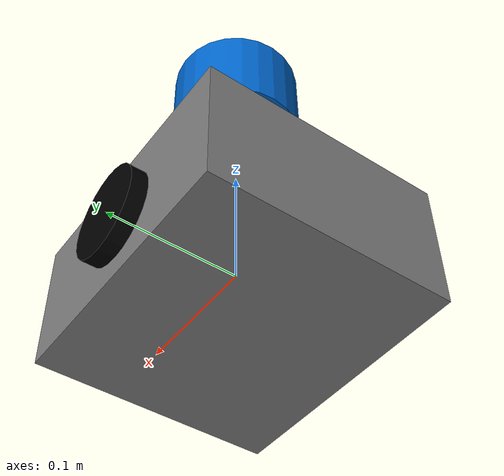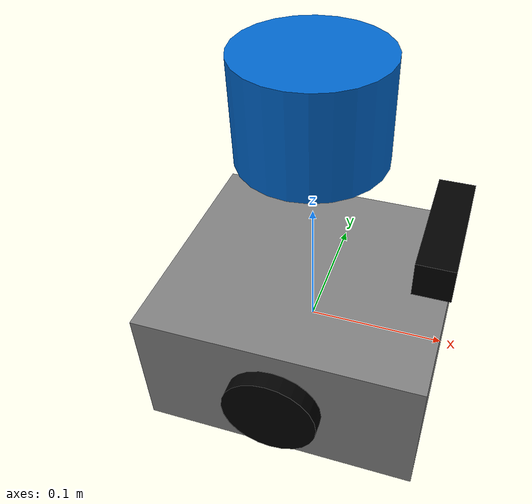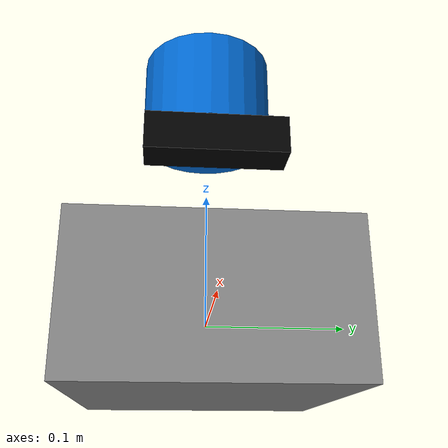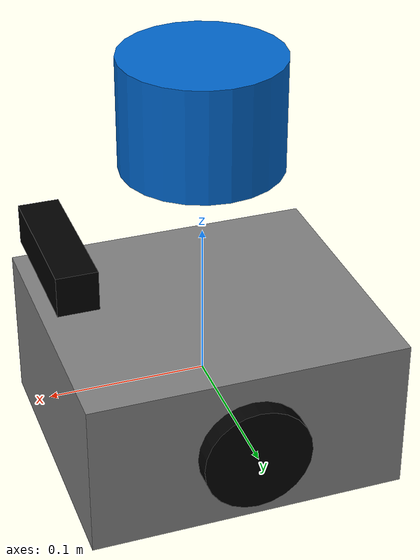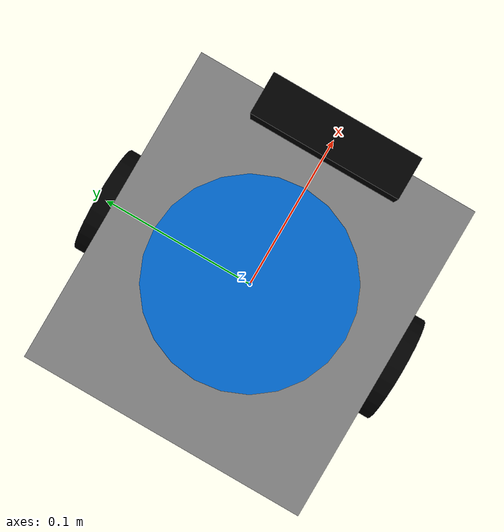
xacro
<?xml version="1.0"?>
<robot name="mybot1" xmlns:xacro="http://www.ros.org/wiki/xacro">

  <xacro:include filename="$(find robot_description)/urdf/materials.xacro"/>
  <xacro:include filename="$(find robot_description)/urdf/base.xacro"/>
  <xacro:include filename="$(find robot_description)/urdf/sensors.xacro"/>

</robot>

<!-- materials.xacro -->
<robot xmlns:xacro="http://www.ros.org/wiki/xacro">
  <material name="black"> <color rgba="0.0 0.0 0.0 1.0"/> </material>
  <material name="grey">  <color rgba="0.5 0.5 0.5 1.0"/> </material>
  <material name="white"> <color rgba="1.0 1.0 1.0 1.0"/> </material>
  <material name="blue">  <color rgba="0.0 0.4 0.8 1.0"/> </material>
</robot>

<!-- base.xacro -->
<robot xmlns:xacro="http://www.ros.org/wiki/xacro">

  <!-- Validated hardware values — do not change without updating CLAUDE.md -->
  <xacro:property name="wheel_radius" value="0.034"/>
  <xacro:property name="wheel_width"  value="0.025"/>
  <xacro:property name="wheel_sep"    value="0.179"/>

  <!-- Chassis estimates — measure and replace before Phase 3 EKF bringup -->
  <xacro:property name="chassis_l" value="0.200"/>
  <xacro:property name="chassis_w" value="0.180"/>
  <xacro:property name="chassis_h" value="0.100"/>

  <!-- Inertia helpers -->
  <xacro:macro name="box_inertia" params="m l w h">
    <inertial>
      <mass value="${m}"/>
      <inertia
        ixx="${m*(h*h+w*w)/12}" ixy="0" ixz="0"
        iyy="${m*(h*h+l*l)/12}" iyz="0"
        izz="${m*(l*l+w*w)/12}"/>
    </inertial>
  </xacro:macro>

  <xacro:macro name="cylinder_inertia" params="m r h">
    <inertial>
      <mass value="${m}"/>
      <inertia
        ixx="${m*(3*r*r+h*h)/12}" ixy="0" ixz="0"
        iyy="${m*(3*r*r+h*h)/12}" iyz="0"
        izz="${m*r*r/2}"/>
    </inertial>
  </xacro:macro>

  <!-- Wheel macro — joint origin rpy="-pi/2 0 0" rotates cylinder z-axis onto parent y-axis -->
  <xacro:macro name="wheel" params="name y_offset">
    <link name="${name}">
      <visual>
        <geometry><cylinder radius="${wheel_radius}" length="${wheel_width}"/></geometry>
        <material name="black"/>
      </visual>
      <collision>
        <geometry><cylinder radius="${wheel_radius}" length="${wheel_width}"/></geometry>
      </collision>
      <xacro:cylinder_inertia m="0.15" r="${wheel_radius}" h="${wheel_width}"/>
    </link>
    <joint name="${name}_joint" type="continuous">
      <parent link="base_link"/>
      <child link="${name}"/>
      <origin xyz="0 ${y_offset} 0" rpy="${-pi/2} 0 0"/>
      <axis xyz="0 0 1"/>
    </joint>
  </xacro:macro>

  <!-- Base chassis — origin at wheel axle height, centered between wheels -->
  <link name="base_link">
    <visual>
      <geometry><box size="${chassis_l} ${chassis_w} ${chassis_h}"/></geometry>
      <material name="grey"/>
    </visual>
    <collision>
      <geometry><box size="${chassis_l} ${chassis_w} ${chassis_h}"/></geometry>
    </collision>
    <xacro:box_inertia m="1.5" l="${chassis_l}" w="${chassis_w}" h="${chassis_h}"/>
  </link>

  <xacro:wheel name="left_wheel"  y_offset=" ${wheel_sep/2}"/>
  <xacro:wheel name="right_wheel" y_offset="-${wheel_sep/2}"/>

</robot>

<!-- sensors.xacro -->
<robot xmlns:xacro="http://www.ros.org/wiki/xacro">

  <!-- RPLidar A1 M8 — top of chassis, centered -->
  <joint name="laser_joint" type="fixed">
    <parent link="base_link"/>
    <child link="laser"/>
    <origin xyz="0.0 0.0 0.18" rpy="0 0 0"/>
  </joint>
  <link name="laser">
    <visual>
      <geometry><cylinder radius="0.05" length="0.07"/></geometry>
      <material name="blue"/>
    </visual>
  </link>

  <!-- Adafruit BNO055 — on ESP32 board, near chassis center -->
  <joint name="imu_joint" type="fixed">
    <parent link="base_link"/>
    <child link="imu_link"/>
    <origin xyz="0.0 0.0 0.03" rpy="0 0 0"/>
  </joint>
  <link name="imu_link"/>

  <!-- Intel RealSense D435 — front face, forward-facing -->
  <joint name="camera_joint" type="fixed">
    <parent link="base_link"/>
    <child link="camera_link"/>
    <origin xyz="0.09 0.0 0.10" rpy="0 0 0"/>
  </joint>
  <link name="camera_link">
    <visual>
      <geometry><box size="0.025 0.090 0.025"/></geometry>
      <material name="black"/>
    </visual>
  </link>

  <!-- RealSense depth origin — 15 mm left of color camera (D435 spec) -->
  <joint name="camera_depth_joint" type="fixed">
    <parent link="camera_link"/>
    <child link="camera_depth_frame"/>
    <origin xyz="0.0 0.015 0.0" rpy="0 0 0"/>
  </joint>
  <link name="camera_depth_frame"/>

</robot>
